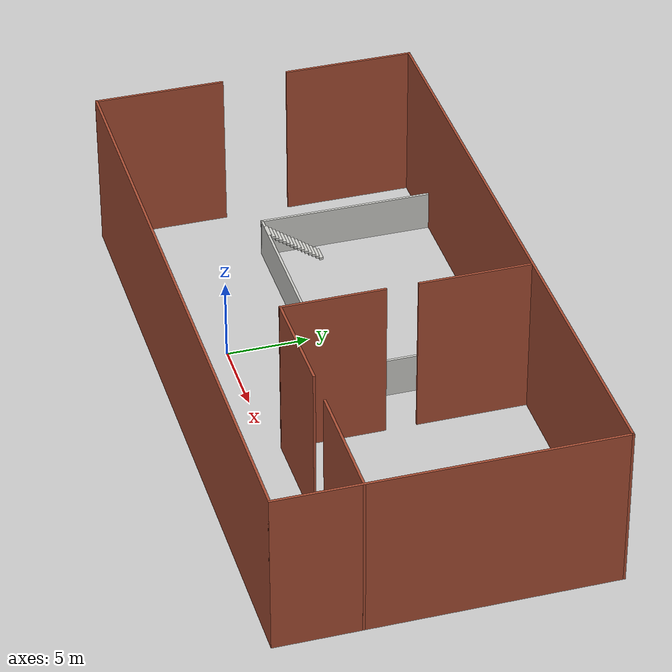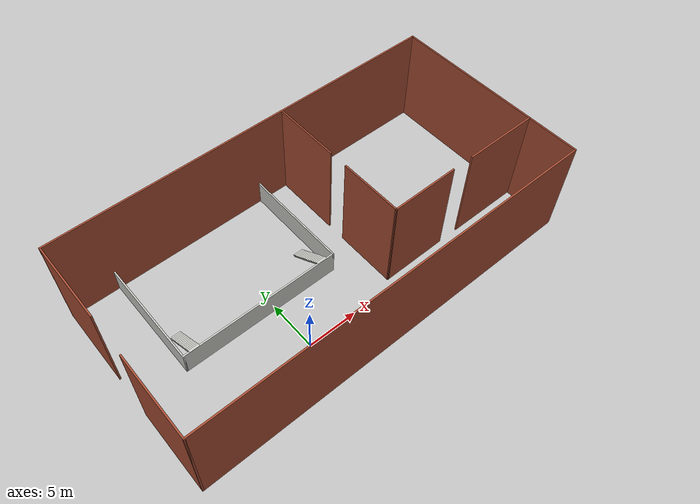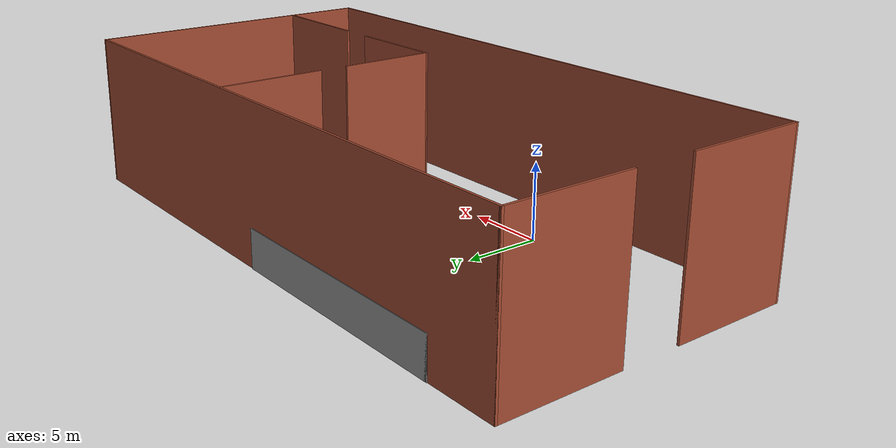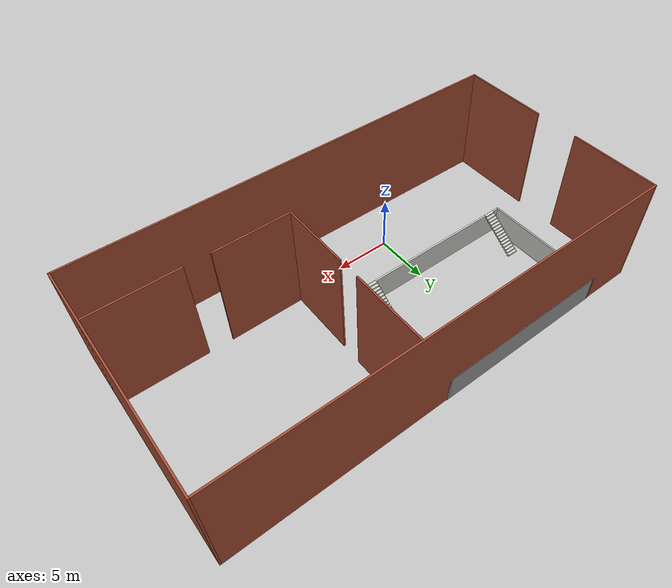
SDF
<?xml version='1.0'?>
<sdf version='1.7'>
  <model name='nuk_plant'>
    <pose>5.94 5.63756 0 0 -0 0</pose>
    <link name='Stairs_0'>
      <visual name='Stairs_0_Visual_0'>
        <pose>-14.1825 2.41899 0.083333 0 -0 0</pose>
        <geometry>
          <box>
            <size>1 0.233333 0.166667</size>
          </box>
        </geometry>
        <material>
          <script>
            <uri>file://media/materials/scripts/gazebo.material</uri>
            <name>Gazebo/CeilingTiled</name>
          </script>
          <ambient>0.921569 0.807843 0.615686 1</ambient>
        </material>
        <meta>
          <layer>0</layer>
        </meta>
      </visual>
      <collision name='Stairs_0_Collision_0'>
        <geometry>
          <box>
            <size>1 0.233333 0.166667</size>
          </box>
        </geometry>
        <pose>-14.1825 2.41899 0.083333 0 -0 0</pose>
      </collision>
      <visual name='Stairs_0_Visual_1'>
        <pose>-14.1825 2.18565 0.25 0 -0 0</pose>
        <geometry>
          <box>
            <size>1 0.233333 0.166667</size>
          </box>
        </geometry>
        <material>
          <script>
            <uri>file://media/materials/scripts/gazebo.material</uri>
            <name>Gazebo/CeilingTiled</name>
          </script>
          <ambient>0.921569 0.807843 0.615686 1</ambient>
        </material>
        <meta>
          <layer>0</layer>
        </meta>
      </visual>
      <collision name='Stairs_0_Collision_1'>
        <geometry>
          <box>
            <size>1 0.233333 0.166667</size>
          </box>
        </geometry>
        <pose>-14.1825 2.18565 0.25 0 -0 0</pose>
      </collision>
      <visual name='Stairs_0_Visual_2'>
        <pose>-14.1825 1.95232 0.416667 0 -0 0</pose>
        <geometry>
          <box>
            <size>1 0.233333 0.166667</size>
          </box>
        </geometry>
        <material>
          <script>
            <uri>file://media/materials/scripts/gazebo.material</uri>
            <name>Gazebo/CeilingTiled</name>
          </script>
          <ambient>0.921569 0.807843 0.615686 1</ambient>
        </material>
        <meta>
          <layer>0</layer>
        </meta>
      </visual>
      <collision name='Stairs_0_Collision_2'>
        <geometry>
          <box>
            <size>1 0.233333 0.166667</size>
          </box>
        </geometry>
        <pose>-14.1825 1.95232 0.416667 0 -0 0</pose>
      </collision>
      <visual name='Stairs_0_Visual_3'>
        <pose>-14.1825 1.71899 0.583333 0 -0 0</pose>
        <geometry>
          <box>
            <size>1 0.233333 0.166667</size>
          </box>
        </geometry>
        <material>
          <script>
            <uri>file://media/materials/scripts/gazebo.material</uri>
            <name>Gazebo/CeilingTiled</name>
          </script>
          <ambient>0.921569 0.807843 0.615686 1</ambient>
        </material>
        <meta>
          <layer>0</layer>
        </meta>
      </visual>
      <collision name='Stairs_0_Collision_3'>
        <geometry>
          <box>
            <size>1 0.233333 0.166667</size>
          </box>
        </geometry>
        <pose>-14.1825 1.71899 0.583333 0 -0 0</pose>
      </collision>
      <visual name='Stairs_0_Visual_4'>
        <pose>-14.1825 1.48565 0.75 0 -0 0</pose>
        <geometry>
          <box>
            <size>1 0.233333 0.166667</size>
          </box>
        </geometry>
        <material>
          <script>
            <uri>file://media/materials/scripts/gazebo.material</uri>
            <name>Gazebo/CeilingTiled</name>
          </script>
          <ambient>0.921569 0.807843 0.615686 1</ambient>
        </material>
        <meta>
          <layer>0</layer>
        </meta>
      </visual>
      <collision name='Stairs_0_Collision_4'>
        <geometry>
          <box>
            <size>1 0.233333 0.166667</size>
          </box>
        </geometry>
        <pose>-14.1825 1.48565 0.75 0 -0 0</pose>
      </collision>
      <visual name='Stairs_0_Visual_5'>
        <pose>-14.1825 1.25232 0.916667 0 -0 0</pose>
        <geometry>
          <box>
            <size>1 0.233333 0.166667</size>
          </box>
        </geometry>
        <material>
          <script>
            <uri>file://media/materials/scripts/gazebo.material</uri>
            <name>Gazebo/CeilingTiled</name>
          </script>
          <ambient>0.921569 0.807843 0.615686 1</ambient>
        </material>
        <meta>
          <layer>0</layer>
        </meta>
      </visual>
      <collision name='Stairs_0_Collision_5'>
        <geometry>
          <box>
            <size>1 0.233333 0.166667</size>
          </box>
        </geometry>
        <pose>-14.1825 1.25232 0.916667 0 -0 0</pose>
      </collision>
      <visual name='Stairs_0_Visual_6'>
        <pose>-14.1825 1.01899 1.08333 0 -0 0</pose>
        <geometry>
          <box>
            <size>1 0.233333 0.166667</size>
          </box>
        </geometry>
        <material>
          <script>
            <uri>file://media/materials/scripts/gazebo.material</uri>
            <name>Gazebo/CeilingTiled</name>
          </script>
          <ambient>0.921569 0.807843 0.615686 1</ambient>
        </material>
        <meta>
          <layer>0</layer>
        </meta>
      </visual>
      <collision name='Stairs_0_Collision_6'>
        <geometry>
          <box>
            <size>1 0.233333 0.166667</size>
          </box>
        </geometry>
        <pose>-14.1825 1.01899 1.08333 0 -0 0</pose>
      </collision>
      <visual name='Stairs_0_Visual_7'>
        <pose>-14.1825 0.785654 1.25 0 -0 0</pose>
        <geometry>
          <box>
            <size>1 0.233333 0.166667</size>
          </box>
        </geometry>
        <material>
          <script>
            <uri>file://media/materials/scripts/gazebo.material</uri>
            <name>Gazebo/CeilingTiled</name>
          </script>
          <ambient>0.921569 0.807843 0.615686 1</ambient>
        </material>
        <meta>
          <layer>0</layer>
        </meta>
      </visual>
      <collision name='Stairs_0_Collision_7'>
        <geometry>
          <box>
            <size>1 0.233333 0.166667</size>
          </box>
        </geometry>
        <pose>-14.1825 0.785654 1.25 0 -0 0</pose>
      </collision>
      <visual name='Stairs_0_Visual_8'>
        <pose>-14.1825 0.552321 1.41667 0 -0 0</pose>
        <geometry>
          <box>
            <size>1 0.233333 0.166667</size>
          </box>
        </geometry>
        <material>
          <script>
            <uri>file://media/materials/scripts/gazebo.material</uri>
            <name>Gazebo/CeilingTiled</name>
          </script>
          <ambient>0.921569 0.807843 0.615686 1</ambient>
        </material>
        <meta>
          <layer>0</layer>
        </meta>
      </visual>
      <collision name='Stairs_0_Collision_8'>
        <geometry>
          <box>
            <size>1 0.233333 0.166667</size>
          </box>
        </geometry>
        <pose>-14.1825 0.552321 1.41667 0 -0 0</pose>
      </collision>
      <visual name='Stairs_0_Visual_9'>
        <pose>-14.1825 0.318988 1.58333 0 -0 0</pose>
        <geometry>
          <box>
            <size>1 0.233333 0.166667</size>
          </box>
        </geometry>
        <material>
          <script>
            <uri>file://media/materials/scripts/gazebo.material</uri>
            <name>Gazebo/CeilingTiled</name>
          </script>
          <ambient>0.921569 0.807843 0.615686 1</ambient>
        </material>
        <meta>
          <layer>0</layer>
        </meta>
      </visual>
      <collision name='Stairs_0_Collision_9'>
        <geometry>
          <box>
            <size>1 0.233333 0.166667</size>
          </box>
        </geometry>
        <pose>-14.1825 0.318988 1.58333 0 -0 0</pose>
      </collision>
      <visual name='Stairs_0_Visual_10'>
        <pose>-14.1825 0.085654 1.75 0 -0 0</pose>
        <geometry>
          <box>
            <size>1 0.233333 0.166667</size>
          </box>
        </geometry>
        <material>
          <script>
            <uri>file://media/materials/scripts/gazebo.material</uri>
            <name>Gazebo/CeilingTiled</name>
          </script>
          <ambient>0.921569 0.807843 0.615686 1</ambient>
        </material>
        <meta>
          <layer>0</layer>
        </meta>
      </visual>
      <collision name='Stairs_0_Collision_10'>
        <geometry>
          <box>
            <size>1 0.233333 0.166667</size>
          </box>
        </geometry>
        <pose>-14.1825 0.085654 1.75 0 -0 0</pose>
      </collision>
      <visual name='Stairs_0_Visual_11'>
        <pose>-14.1825 -0.147679 1.91667 0 -0 0</pose>
        <geometry>
          <box>
            <size>1 0.233333 0.166667</size>
          </box>
        </geometry>
        <material>
          <script>
            <uri>file://media/materials/scripts/gazebo.material</uri>
            <name>Gazebo/CeilingTiled</name>
          </script>
          <ambient>0.921569 0.807843 0.615686 1</ambient>
        </material>
        <meta>
          <layer>0</layer>
        </meta>
      </visual>
      <collision name='Stairs_0_Collision_11'>
        <geometry>
          <box>
            <size>1 0.233333 0.166667</size>
          </box>
        </geometry>
        <pose>-14.1825 -0.147679 1.91667 0 -0 0</pose>
      </collision>
      <visual name='Stairs_0_Visual_12'>
        <pose>-14.1825 -0.381012 2.08333 0 -0 0</pose>
        <geometry>
          <box>
            <size>1 0.233333 0.166667</size>
          </box>
        </geometry>
        <material>
          <script>
            <uri>file://media/materials/scripts/gazebo.material</uri>
            <name>Gazebo/CeilingTiled</name>
          </script>
          <ambient>0.921569 0.807843 0.615686 1</ambient>
        </material>
        <meta>
          <layer>0</layer>
        </meta>
      </visual>
      <collision name='Stairs_0_Collision_12'>
        <geometry>
          <box>
            <size>1 0.233333 0.166667</size>
          </box>
        </geometry>
        <pose>-14.1825 -0.381012 2.08333 0 -0 0</pose>
      </collision>
      <visual name='Stairs_0_Visual_13'>
        <pose>-14.1825 -0.614346 2.25 0 -0 0</pose>
        <geometry>
          <box>
            <size>1 0.233333 0.166667</size>
          </box>
        </geometry>
        <material>
          <script>
            <uri>file://media/materials/scripts/gazebo.material</uri>
            <name>Gazebo/CeilingTiled</name>
          </script>
          <ambient>0.921569 0.807843 0.615686 1</ambient>
        </material>
        <meta>
          <layer>0</layer>
        </meta>
      </visual>
      <collision name='Stairs_0_Collision_13'>
        <geometry>
          <box>
            <size>1 0.233333 0.166667</size>
          </box>
        </geometry>
        <pose>-14.1825 -0.614346 2.25 0 -0 0</pose>
      </collision>
      <visual name='Stairs_0_Visual_14'>
        <pose>-14.1825 -0.847679 2.41667 0 -0 0</pose>
        <geometry>
          <box>
            <size>1 0.233333 0.166667</size>
          </box>
        </geometry>
        <material>
          <script>
            <uri>file://media/materials/scripts/gazebo.material</uri>
            <name>Gazebo/CeilingTiled</name>
          </script>
          <ambient>0.921569 0.807843 0.615686 1</ambient>
        </material>
        <meta>
          <layer>0</layer>
        </meta>
      </visual>
      <collision name='Stairs_0_Collision_14'>
        <geometry>
          <box>
            <size>1 0.233333 0.166667</size>
          </box>
        </geometry>
        <pose>-14.1825 -0.847679 2.41667 0 -0 0</pose>
      </collision>
    </link>
    <link name='Stairs_1'>
      <visual name='Stairs_1_Visual_0'>
        <pose>-0.662074 2.46263 0.083333 0 -0 0</pose>
        <geometry>
          <box>
            <size>1 0.233333 0.166667</size>
          </box>
        </geometry>
        <material>
          <script>
            <uri>file://media/materials/scripts/gazebo.material</uri>
            <name>Gazebo/CeilingTiled</name>
          </script>
          <ambient>0.921569 0.807843 0.615686 1</ambient>
        </material>
        <meta>
          <layer>0</layer>
        </meta>
      </visual>
      <collision name='Stairs_1_Collision_0'>
        <geometry>
          <box>
            <size>1 0.233333 0.166667</size>
          </box>
        </geometry>
        <pose>-0.662074 2.46263 0.083333 0 -0 0</pose>
      </collision>
      <visual name='Stairs_1_Visual_1'>
        <pose>-0.662074 2.2293 0.25 0 -0 0</pose>
        <geometry>
          <box>
            <size>1 0.233333 0.166667</size>
          </box>
        </geometry>
        <material>
          <script>
            <uri>file://media/materials/scripts/gazebo.material</uri>
            <name>Gazebo/CeilingTiled</name>
          </script>
          <ambient>0.921569 0.807843 0.615686 1</ambient>
        </material>
        <meta>
          <layer>0</layer>
        </meta>
      </visual>
      <collision name='Stairs_1_Collision_1'>
        <geometry>
          <box>
            <size>1 0.233333 0.166667</size>
          </box>
        </geometry>
        <pose>-0.662074 2.2293 0.25 0 -0 0</pose>
      </collision>
      <visual name='Stairs_1_Visual_2'>
        <pose>-0.662074 1.99597 0.416667 0 -0 0</pose>
        <geometry>
          <box>
            <size>1 0.233333 0.166667</size>
          </box>
        </geometry>
        <material>
          <script>
            <uri>file://media/materials/scripts/gazebo.material</uri>
            <name>Gazebo/CeilingTiled</name>
          </script>
          <ambient>0.921569 0.807843 0.615686 1</ambient>
        </material>
        <meta>
          <layer>0</layer>
        </meta>
      </visual>
      <collision name='Stairs_1_Collision_2'>
        <geometry>
          <box>
            <size>1 0.233333 0.166667</size>
          </box>
        </geometry>
        <pose>-0.662074 1.99597 0.416667 0 -0 0</pose>
      </collision>
      <visual name='Stairs_1_Visual_3'>
        <pose>-0.662074 1.76263 0.583333 0 -0 0</pose>
        <geometry>
          <box>
            <size>1 0.233333 0.166667</size>
          </box>
        </geometry>
        <material>
          <script>
            <uri>file://media/materials/scripts/gazebo.material</uri>
            <name>Gazebo/CeilingTiled</name>
          </script>
          <ambient>0.921569 0.807843 0.615686 1</ambient>
        </material>
        <meta>
          <layer>0</layer>
        </meta>
      </visual>
      <collision name='Stairs_1_Collision_3'>
        <geometry>
          <box>
            <size>1 0.233333 0.166667</size>
          </box>
        </geometry>
        <pose>-0.662074 1.76263 0.583333 0 -0 0</pose>
      </collision>
      <visual name='Stairs_1_Visual_4'>
        <pose>-0.662074 1.5293 0.75 0 -0 0</pose>
        <geometry>
          <box>
            <size>1 0.233333 0.166667</size>
          </box>
        </geometry>
        <material>
          <script>
            <uri>file://media/materials/scripts/gazebo.material</uri>
            <name>Gazebo/CeilingTiled</name>
          </script>
          <ambient>0.921569 0.807843 0.615686 1</ambient>
        </material>
        <meta>
          <layer>0</layer>
        </meta>
      </visual>
      <collision name='Stairs_1_Collision_4'>
        <geometry>
          <box>
            <size>1 0.233333 0.166667</size>
          </box>
        </geometry>
        <pose>-0.662074 1.5293 0.75 0 -0 0</pose>
      </collision>
      <visual name='Stairs_1_Visual_5'>
        <pose>-0.662074 1.29597 0.916667 0 -0 0</pose>
        <geometry>
          <box>
            <size>1 0.233333 0.166667</size>
          </box>
        </geometry>
        <material>
          <script>
            <uri>file://media/materials/scripts/gazebo.material</uri>
            <name>Gazebo/CeilingTiled</name>
          </script>
          <ambient>0.921569 0.807843 0.615686 1</ambient>
        </material>
        <meta>
          <layer>0</layer>
        </meta>
      </visual>
      <collision name='Stairs_1_Collision_5'>
        <geometry>
          <box>
            <size>1 0.233333 0.166667</size>
          </box>
        </geometry>
        <pose>-0.662074 1.29597 0.916667 0 -0 0</pose>
      </collision>
      <visual name='Stairs_1_Visual_6'>
        <pose>-0.662074 1.06263 1.08333 0 -0 0</pose>
        <geometry>
          <box>
            <size>1 0.233333 0.166667</size>
          </box>
        </geometry>
        <material>
          <script>
            <uri>file://media/materials/scripts/gazebo.material</uri>
            <name>Gazebo/CeilingTiled</name>
          </script>
          <ambient>0.921569 0.807843 0.615686 1</ambient>
        </material>
        <meta>
          <layer>0</layer>
        </meta>
      </visual>
      <collision name='Stairs_1_Collision_6'>
        <geometry>
          <box>
            <size>1 0.233333 0.166667</size>
          </box>
        </geometry>
        <pose>-0.662074 1.06263 1.08333 0 -0 0</pose>
      </collision>
      <visual name='Stairs_1_Visual_7'>
        <pose>-0.662074 0.829299 1.25 0 -0 0</pose>
        <geometry>
          <box>
            <size>1 0.233333 0.166667</size>
          </box>
        </geometry>
        <material>
          <script>
            <uri>file://media/materials/scripts/gazebo.material</uri>
            <name>Gazebo/CeilingTiled</name>
          </script>
          <ambient>0.921569 0.807843 0.615686 1</ambient>
        </material>
        <meta>
          <layer>0</layer>
        </meta>
      </visual>
      <collision name='Stairs_1_Collision_7'>
        <geometry>
          <box>
            <size>1 0.233333 0.166667</size>
          </box>
        </geometry>
        <pose>-0.662074 0.829299 1.25 0 -0 0</pose>
      </collision>
      <visual name='Stairs_1_Visual_8'>
        <pose>-0.662074 0.595965 1.41667 0 -0 0</pose>
        <geometry>
          <box>
            <size>1 0.233333 0.166667</size>
          </box>
        </geometry>
        <material>
          <script>
            <uri>file://media/materials/scripts/gazebo.material</uri>
            <name>Gazebo/CeilingTiled</name>
          </script>
          <ambient>0.921569 0.807843 0.615686 1</ambient>
        </material>
        <meta>
          <layer>0</layer>
        </meta>
      </visual>
      <collision name='Stairs_1_Collision_8'>
        <geometry>
          <box>
            <size>1 0.233333 0.166667</size>
          </box>
        </geometry>
        <pose>-0.662074 0.595965 1.41667 0 -0 0</pose>
      </collision>
      <visual name='Stairs_1_Visual_9'>
        <pose>-0.662074 0.362632 1.58333 0 -0 0</pose>
        <geometry>
          <box>
            <size>1 0.233333 0.166667</size>
          </box>
        </geometry>
        <material>
          <script>
            <uri>file://media/materials/scripts/gazebo.material</uri>
            <name>Gazebo/CeilingTiled</name>
          </script>
          <ambient>0.921569 0.807843 0.615686 1</ambient>
        </material>
        <meta>
          <layer>0</layer>
        </meta>
      </visual>
      <collision name='Stairs_1_Collision_9'>
        <geometry>
          <box>
            <size>1 0.233333 0.166667</size>
          </box>
        </geometry>
        <pose>-0.662074 0.362632 1.58333 0 -0 0</pose>
      </collision>
      <visual name='Stairs_1_Visual_10'>
        <pose>-0.662074 0.129299 1.75 0 -0 0</pose>
        <geometry>
          <box>
            <size>1 0.233333 0.166667</size>
          </box>
        </geometry>
        <material>
          <script>
            <uri>file://media/materials/scripts/gazebo.material</uri>
            <name>Gazebo/CeilingTiled</name>
          </script>
          <ambient>0.921569 0.807843 0.615686 1</ambient>
        </material>
        <meta>
          <layer>0</layer>
        </meta>
      </visual>
      <collision name='Stairs_1_Collision_10'>
        <geometry>
          <box>
            <size>1 0.233333 0.166667</size>
          </box>
        </geometry>
        <pose>-0.662074 0.129299 1.75 0 -0 0</pose>
      </collision>
      <visual name='Stairs_1_Visual_11'>
        <pose>-0.662074 -0.104035 1.91667 0 -0 0</pose>
        <geometry>
          <box>
            <size>1 0.233333 0.166667</size>
          </box>
        </geometry>
        <material>
          <script>
            <uri>file://media/materials/scripts/gazebo.material</uri>
            <name>Gazebo/CeilingTiled</name>
          </script>
          <ambient>0.921569 0.807843 0.615686 1</ambient>
        </material>
        <meta>
          <layer>0</layer>
        </meta>
      </visual>
      <collision name='Stairs_1_Collision_11'>
        <geometry>
          <box>
            <size>1 0.233333 0.166667</size>
          </box>
        </geometry>
        <pose>-0.662074 -0.104035 1.91667 0 -0 0</pose>
      </collision>
      <visual name='Stairs_1_Visual_12'>
        <pose>-0.662074 -0.337368 2.08333 0 -0 0</pose>
        <geometry>
          <box>
            <size>1 0.233333 0.166667</size>
          </box>
        </geometry>
        <material>
          <script>
            <uri>file://media/materials/scripts/gazebo.material</uri>
            <name>Gazebo/CeilingTiled</name>
          </script>
          <ambient>0.921569 0.807843 0.615686 1</ambient>
        </material>
        <meta>
          <layer>0</layer>
        </meta>
      </visual>
      <collision name='Stairs_1_Collision_12'>
        <geometry>
          <box>
            <size>1 0.233333 0.166667</size>
          </box>
        </geometry>
        <pose>-0.662074 -0.337368 2.08333 0 -0 0</pose>
      </collision>
      <visual name='Stairs_1_Visual_13'>
        <pose>-0.662074 -0.570701 2.25 0 -0 0</pose>
        <geometry>
          <box>
            <size>1 0.233333 0.166667</size>
          </box>
        </geometry>
        <material>
          <script>
            <uri>file://media/materials/scripts/gazebo.material</uri>
            <name>Gazebo/CeilingTiled</name>
          </script>
          <ambient>0.921569 0.807843 0.615686 1</ambient>
        </material>
        <meta>
          <layer>0</layer>
        </meta>
      </visual>
      <collision name='Stairs_1_Collision_13'>
        <geometry>
          <box>
            <size>1 0.233333 0.166667</size>
          </box>
        </geometry>
        <pose>-0.662074 -0.570701 2.25 0 -0 0</pose>
      </collision>
      <visual name='Stairs_1_Visual_14'>
        <pose>-0.662074 -0.804034 2.41667 0 -0 0</pose>
        <geometry>
          <box>
            <size>1 0.233333 0.166667</size>
          </box>
        </geometry>
        <material>
          <script>
            <uri>file://media/materials/scripts/gazebo.material</uri>
            <name>Gazebo/CeilingTiled</name>
          </script>
          <ambient>0.921569 0.807843 0.615686 1</ambient>
        </material>
        <meta>
          <layer>0</layer>
        </meta>
      </visual>
      <collision name='Stairs_1_Collision_14'>
        <geometry>
          <box>
            <size>1 0.233333 0.166667</size>
          </box>
        </geometry>
        <pose>-0.662074 -0.804034 2.41667 0 -0 0</pose>
      </collision>
    </link>
    <link name='Wall_1'>
      <collision name='Wall_1_Collision'>
        <geometry>
          <box>
            <size>40 0.15 10</size>
          </box>
        </geometry>
        <pose>0 0 5 0 -0 0</pose>
      </collision>
      <visual name='Wall_1_Visual'>
        <pose>0 0 5 0 -0 0</pose>
        <geometry>
          <box>
            <size>40 0.15 10</size>
          </box>
        </geometry>
        <material>
          <script>
            <uri>file://media/materials/scripts/gazebo.material</uri>
            <name>Gazebo/Bricks</name>
          </script>
          <ambient>1 1 1 1</ambient>
        </material>
        <meta>
          <layer>0</layer>
        </meta>
      </visual>
      <pose>-0.000999 -9.94556 0 0 -0 0</pose>
    </link>
    <link name='Wall_11'>
      <collision name='Wall_11_Collision'>
        <geometry>
          <box>
            <size>40 0.15 10</size>
          </box>
        </geometry>
        <pose>0 0 5 0 -0 0</pose>
      </collision>
      <visual name='Wall_11_Visual'>
        <pose>0 0 5 0 -0 0</pose>
        <geometry>
          <box>
            <size>40 0.15 10</size>
          </box>
        </geometry>
        <material>
          <script>
            <uri>file://media/materials/scripts/gazebo.material</uri>
            <name>Gazebo/Bricks</name>
          </script>
          <ambient>1 1 1 1</ambient>
        </material>
        <meta>
          <layer>0</layer>
        </meta>
      </visual>
      <pose>-0.000999 9.90444 0 0 -0 0</pose>
    </link>
    <link name='Wall_13'>
      <collision name='Wall_13_Collision'>
        <geometry>
          <box>
            <size>8 0.15 10</size>
          </box>
        </geometry>
        <pose>0 0 5 0 -0 0</pose>
      </collision>
      <visual name='Wall_13_Visual'>
        <pose>0 0 5 0 -0 0</pose>
        <geometry>
          <box>
            <size>8 0.15 10</size>
          </box>
        </geometry>
        <material>
          <script>
            <uri>file://media/materials/scripts/gazebo.material</uri>
            <name>Gazebo/Bricks</name>
          </script>
          <ambient>1 1 1 1</ambient>
        </material>
        <meta>
          <layer>0</layer>
        </meta>
      </visual>
      <pose>-19.926 -6.02056 0 0 -0 1.5708</pose>
    </link>
    <link name='Wall_15'>
      <collision name='Wall_15_Collision'>
        <geometry>
          <box>
            <size>8 0.15 10</size>
          </box>
        </geometry>
        <pose>0 0 5 0 -0 0</pose>
      </collision>
      <visual name='Wall_15_Visual'>
        <pose>0 0 5 0 -0 0</pose>
        <geometry>
          <box>
            <size>8 0.15 10</size>
          </box>
        </geometry>
        <material>
          <script>
            <uri>file://media/materials/scripts/gazebo.material</uri>
            <name>Gazebo/Bricks</name>
          </script>
          <ambient>1 1 1 1</ambient>
        </material>
        <meta>
          <layer>0</layer>
        </meta>
      </visual>
      <pose>-19.926 5.97944 0 0 -0 -1.5708</pose>
    </link>
    <link name='Wall_18'>
      <collision name='Wall_18_Collision'>
        <geometry>
          <box>
            <size>6.75 0.15 10</size>
          </box>
        </geometry>
        <pose>0 0 5 0 -0 0</pose>
      </collision>
      <visual name='Wall_18_Visual'>
        <pose>0 0 5 0 -0 0</pose>
        <geometry>
          <box>
            <size>6.75 0.15 10</size>
          </box>
        </geometry>
        <material>
          <script>
            <uri>file://media/materials/scripts/gazebo.material</uri>
            <name>Gazebo/Bricks</name>
          </script>
          <ambient>1 1 1 1</ambient>
        </material>
        <meta>
          <layer>0</layer>
        </meta>
      </visual>
      <pose>7.015 -4.87106 0 0 -0 0.007727</pose>
    </link>
    <link name='Wall_20'>
      <collision name='Wall_20_Collision'>
        <geometry>
          <box>
            <size>7.5 0.15 10</size>
          </box>
        </geometry>
        <pose>0 0 5 0 -0 0</pose>
      </collision>
      <visual name='Wall_20_Visual'>
        <pose>0 0 5 0 -0 0</pose>
        <geometry>
          <box>
            <size>7.5 0.15 10</size>
          </box>
        </geometry>
        <material>
          <script>
            <uri>file://media/materials/scripts/gazebo.material</uri>
            <name>Gazebo/Bricks</name>
          </script>
          <ambient>1 1 1 1</ambient>
        </material>
        <meta>
          <layer>0</layer>
        </meta>
      </visual>
      <pose>16.251 -4.87056 0 0 -0 3.14159</pose>
    </link>
    <link name='Wall_22'>
      <collision name='Wall_22_Collision'>
        <geometry>
          <box>
            <size>6.25 0.15 10</size>
          </box>
        </geometry>
        <pose>0 0 5 0 -0 0</pose>
      </collision>
      <visual name='Wall_22_Visual'>
        <pose>0 0 5 0 -0 0</pose>
        <geometry>
          <box>
            <size>6.25 0.15 10</size>
          </box>
        </geometry>
        <material>
          <script>
            <uri>file://media/materials/scripts/gazebo.material</uri>
            <name>Gazebo/Bricks</name>
          </script>
          <ambient>1 1 1 1</ambient>
        </material>
        <meta>
          <layer>0</layer>
        </meta>
      </visual>
      <pose>3.715 -1.84656 0 0 -0 1.5708</pose>
    </link>
    <link name='Wall_27'>
      <collision name='Wall_27_Collision'>
        <geometry>
          <box>
            <size>6.75 0.15 10</size>
          </box>
        </geometry>
        <pose>0 0 5 0 -0 0</pose>
      </collision>
      <visual name='Wall_27_Visual'>
        <pose>0 0 5 0 -0 0</pose>
        <geometry>
          <box>
            <size>6.75 0.15 10</size>
          </box>
        </geometry>
        <material>
          <script>
            <uri>file://media/materials/scripts/gazebo.material</uri>
            <name>Gazebo/Bricks</name>
          </script>
          <ambient>1 1 1 1</ambient>
        </material>
        <meta>
          <layer>0</layer>
        </meta>
      </visual>
      <pose>3.715 6.50344 0 0 -0 -1.5708</pose>
    </link>
    <link name='Wall_29'>
      <collision name='Wall_29_Collision'>
        <geometry>
          <box>
            <size>0.16 0.15 2.5</size>
          </box>
        </geometry>
        <pose>0 0 1.25 0 -0 0</pose>
      </collision>
      <visual name='Wall_29_Visual'>
        <pose>0 0 1.25 0 -0 0</pose>
        <geometry>
          <box>
            <size>0.16 0.15 2.5</size>
          </box>
        </geometry>
        <material>
          <script>
            <uri>file://media/materials/scripts/gazebo.material</uri>
            <name>Gazebo/Grey</name>
          </script>
          <ambient>1 1 1 1</ambient>
        </material>
        <meta>
          <layer>0</layer>
        </meta>
      </visual>
      <pose>-15.2862 9.94556 0 0 -0 0</pose>
    </link>
    <link name='Wall_30'>
      <collision name='Wall_30_Collision'>
        <geometry>
          <box>
            <size>11 0.15 2.5</size>
          </box>
        </geometry>
        <pose>0 0 1.25 0 -0 0</pose>
      </collision>
      <visual name='Wall_30_Visual'>
        <pose>0 0 1.25 0 -0 0</pose>
        <geometry>
          <box>
            <size>11 0.15 2.5</size>
          </box>
        </geometry>
        <material>
          <script>
            <uri>file://media/materials/scripts/gazebo.material</uri>
            <name>Gazebo/CeilingTiled</name>
          </script>
          <ambient>1 1 1 1</ambient>
        </material>
        <meta>
          <layer>0</layer>
        </meta>
      </visual>
      <pose>-15.2812 4.52056 0 0 -0 -1.5708</pose>
    </link>
    <link name='Wall_31'>
      <collision name='Wall_31_Collision'>
        <geometry>
          <box>
            <size>16 0.15 2.5</size>
          </box>
        </geometry>
        <pose>0 0 1.25 0 -0 0</pose>
      </collision>
      <visual name='Wall_31_Visual'>
        <pose>0 0 1.25 0 -0 0</pose>
        <geometry>
          <box>
            <size>16 0.15 2.5</size>
          </box>
        </geometry>
        <material>
          <script>
            <uri>file://media/materials/scripts/gazebo.material</uri>
            <name>Gazebo/CeilingTiled</name>
          </script>
          <ambient>1 1 1 1</ambient>
        </material>
        <meta>
          <layer>0</layer>
        </meta>
      </visual>
      <pose>-7.35622 -0.904441 0 0 -0 0</pose>
    </link>
    <link name='Wall_32'>
      <collision name='Wall_32_Collision'>
        <geometry>
          <box>
            <size>11 0.15 2.5</size>
          </box>
        </geometry>
        <pose>0 0 1.25 0 -0 0</pose>
      </collision>
      <visual name='Wall_32_Visual'>
        <pose>0 0 1.25 0 -0 0</pose>
        <geometry>
          <box>
            <size>11 0.15 2.5</size>
          </box>
        </geometry>
        <material>
          <script>
            <uri>file://media/materials/scripts/gazebo.material</uri>
            <name>Gazebo/CeilingTiled</name>
          </script>
          <ambient>1 1 1 1</ambient>
        </material>
        <meta>
          <layer>0</layer>
        </meta>
      </visual>
      <pose>0.568781 4.52056 0 0 -0 1.5708</pose>
    </link>
    <link name='Wall_34'>
      <collision name='Wall_34_Collision'>
        <geometry>
          <box>
            <size>16 0.15 2.5</size>
          </box>
        </geometry>
        <pose>0 0 1.25 0 -0 0</pose>
      </collision>
      <visual name='Wall_34_Visual'>
        <pose>0 0 1.25 0 -0 0</pose>
        <geometry>
          <box>
            <size>16 0.15 2.5</size>
          </box>
        </geometry>
        <material>
          <script>
            <uri>file://media/materials/scripts/gazebo.material</uri>
            <name>Gazebo/Grey</name>
          </script>
          <ambient>1 1 1 1</ambient>
        </material>
        <meta>
          <layer>0</layer>
        </meta>
      </visual>
      <pose>-7.35622 9.94556 0 0 -0 0</pose>
    </link>
    <link name='Wall_9'>
      <collision name='Wall_9_Collision'>
        <geometry>
          <box>
            <size>20 0.15 10</size>
          </box>
        </geometry>
        <pose>0 0 5 0 -0 0</pose>
      </collision>
      <visual name='Wall_9_Visual'>
        <pose>0 0 5 0 -0 0</pose>
        <geometry>
          <box>
            <size>20 0.15 10</size>
          </box>
        </geometry>
        <material>
          <script>
            <uri>file://media/materials/scripts/gazebo.material</uri>
            <name>Gazebo/Bricks</name>
          </script>
          <ambient>1 1 1 1</ambient>
        </material>
        <meta>
          <layer>0</layer>
        </meta>
      </visual>
      <pose>19.924 -0.020558 0 0 -0 1.5708</pose>
    </link>
    <static>1</static>
  </model>
</sdf>
